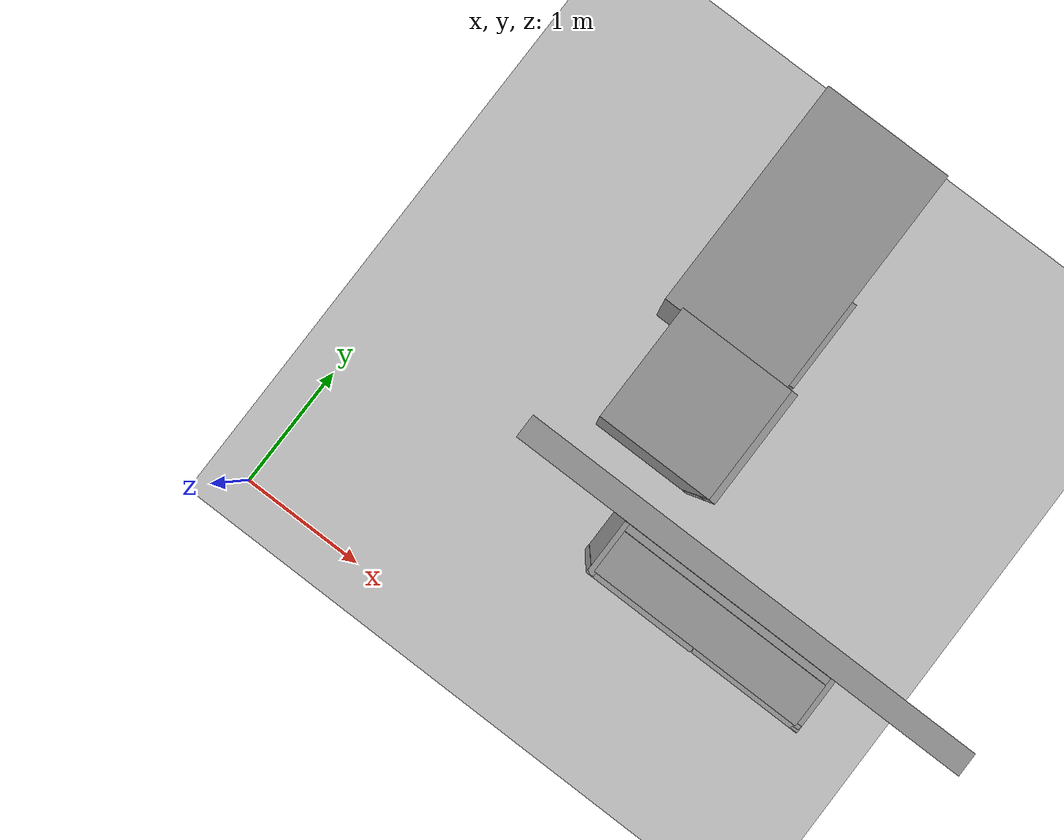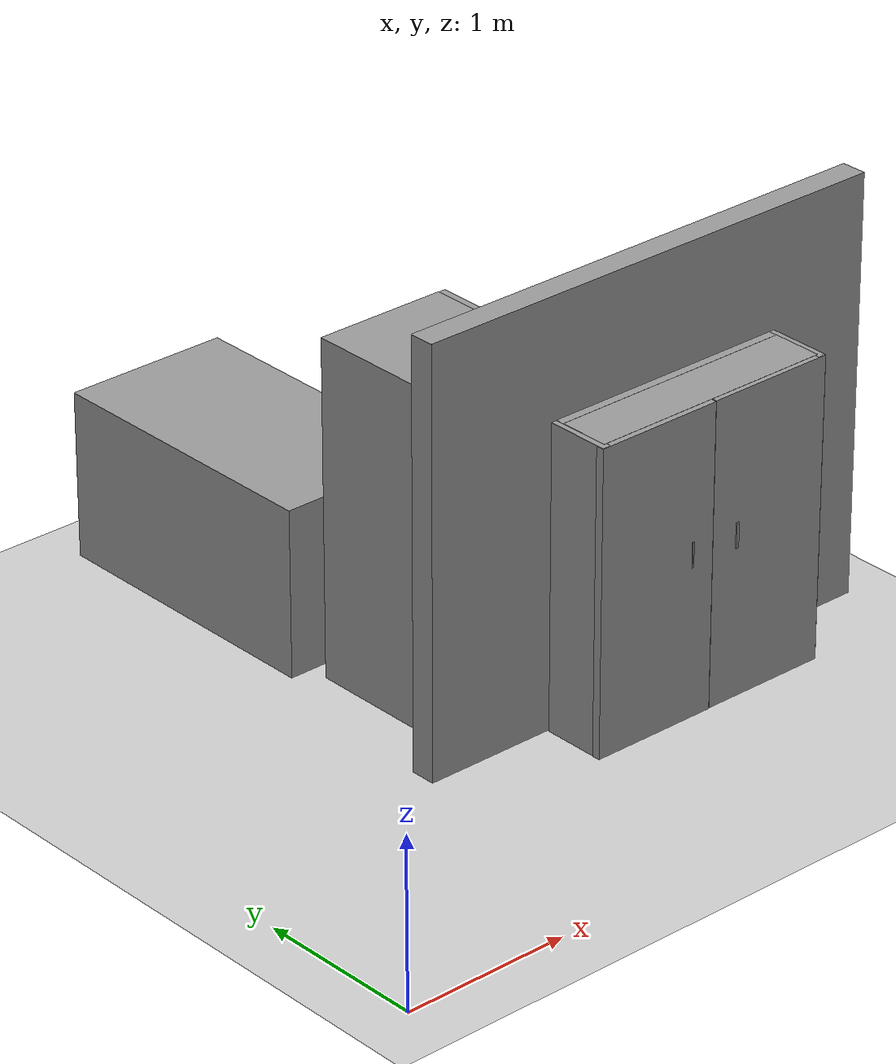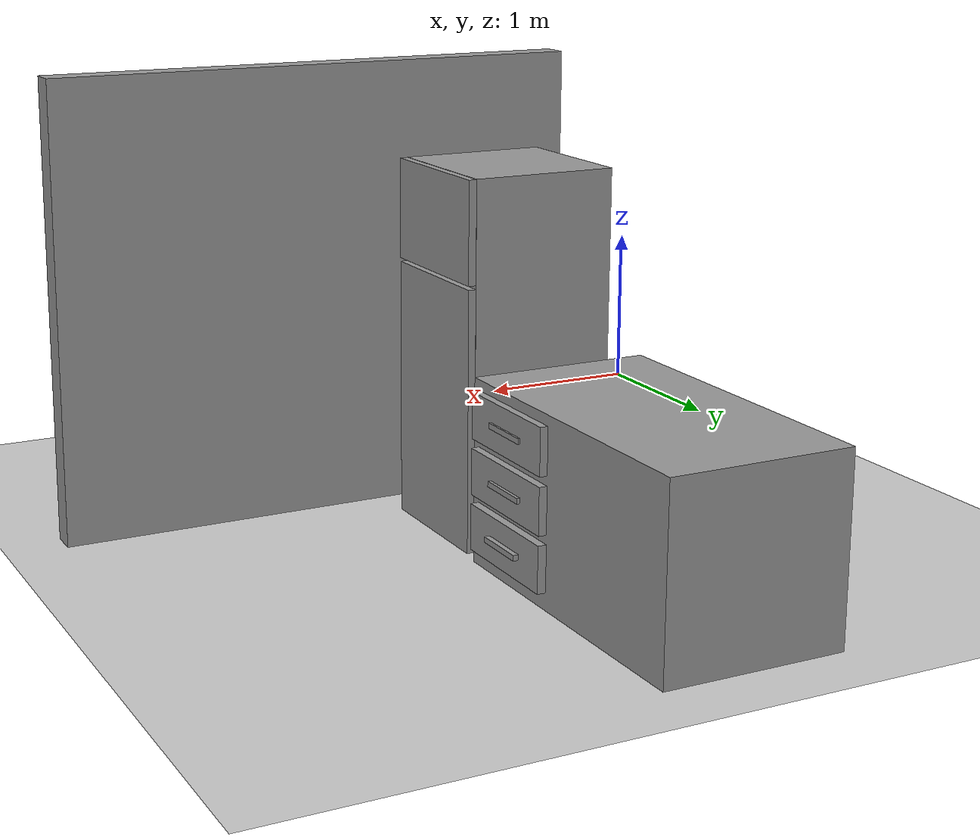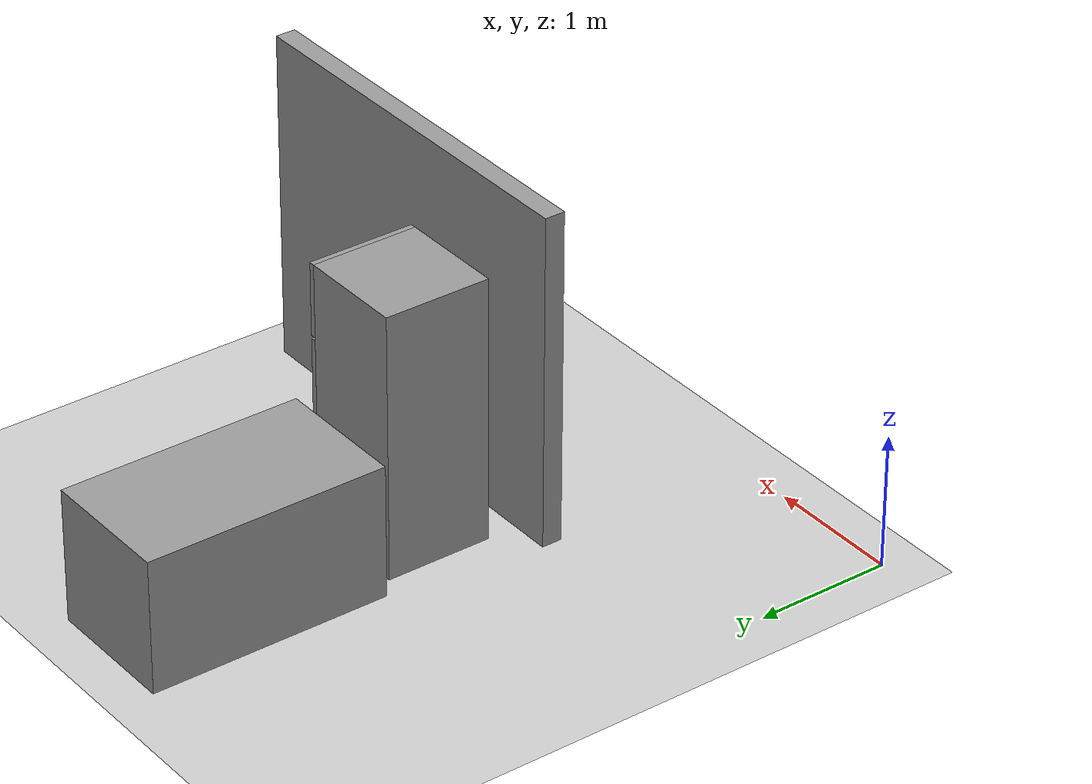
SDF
<sdf version="1.7">
 <world name="default">
  <model name="ground_plane">
   <static>1</static>
   <link name="link">
    <collision name="collision">
     <geometry><plane><normal>0 0 1</normal><size>100 100</size></plane></geometry>
     <surface>
      <contact><collide_bitmask>65535</collide_bitmask></contact>
      <friction><ode><mu>100</mu><mu2>50</mu2></ode></friction>
     </surface>
    </collision>
    <visual name="visual">
     <cast_shadows>0</cast_shadows>
     <geometry><plane><normal>0 0 1</normal><size>100 100</size></plane></geometry>
     <material>
      <script><uri>file://media/materials/scripts/gazebo.material</uri><name>Gazebo/Grey</name></script>
     </material>
    </visual>
   </link>
  </model>
  <model name="my_building_p4">
   <link name="Wall_43">
    <pose>4.5 -1.38492 0 0 -0 0</pose>
    <inertial>
     <mass>1</mass>
     <inertia><ixx>1</ixx><ixy>0</ixy><ixz>0</ixz><iyy>1</iyy><iyz>0</iyz><izz>1</izz></inertia>
    </inertial>
    <visual name="Wall_43_Visual">
     <pose>-1.5 0 1.25 0 -0 0</pose>
     <geometry><box><size>3 0.15 2.5</size></box></geometry>
     <material>
      <script><uri>file://media/materials/scripts/gazebo.material</uri><name>Gazebo/Grey</name></script>
      <ambient>1 1 1 1</ambient>
      <shader type="pixel"><normal_map>__default__</normal_map></shader>
      <diffuse>0.7 0.7 0.7 1</diffuse>
      <specular>0.01 0.01 0.01 1</specular>
      <emissive>0 0 0 1</emissive>
     </material>
     <meta><layer>0</layer></meta>
    </visual>
    <collision name="Wall_43_Collision">
     <pose>-1.5 0 1.25 0 -0 0</pose>
     <geometry><box><size>3 0.15 2.5</size></box></geometry>
     <surface>
      <friction>
       <ode><mu>1</mu><mu2>1</mu2><fdir1>0 0 0</fdir1><slip1>0</slip1><slip2>0</slip2></ode>
       <torsional>
        <coefficient>1</coefficient>
        <patch_radius>0</patch_radius>
        <surface_radius>0</surface_radius>
        <use_patch_radius>1</use_patch_radius>
        <ode><slip>0</slip></ode>
       </torsional>
      </friction>
      <bounce><restitution_coefficient>0</restitution_coefficient><threshold>1e+06</threshold></bounce>
      <contact>
       <collide_without_contact>0</collide_without_contact>
       <collide_without_contact_bitmask>1</collide_without_contact_bitmask>
       <collide_bitmask>1</collide_bitmask>
       <ode>
        <soft_cfm>0</soft_cfm>
        <soft_erp>0.2</soft_erp>
        <kp>1e+13</kp>
        <kd>1</kd>
        <max_vel>0.01</max_vel>
        <min_depth>0</min_depth>
       </ode>
       <bullet>
        <split_impulse>1</split_impulse>
        <split_impulse_penetration_threshold>-0.01</split_impulse_penetration_threshold>
        <soft_cfm>0</soft_cfm>
        <soft_erp>0.2</soft_erp>
        <kp>1e+13</kp>
        <kd>1</kd>
       </bullet>
      </contact>
     </surface>
    </collision>
   </link>
   <static>1</static>
   <pose>-0.017657 2.964 0 0 -0 0</pose>
  </model>
  <model name="my_kitchen">
   <link name="link_clone">
    <inertial>
     <mass>1</mass>
     <inertia>
      <ixx>0.166667</ixx>
      <ixy>0</ixy>
      <ixz>0</ixz>
      <iyy>0.166667</iyy>
      <iyz>0</iyz>
      <izz>0.166667</izz>
     </inertia>
    </inertial>
    <pose>-1.0136 -2.15012 0 0 -0 0</pose>
    <visual name="visual">
     <geometry><box><size>1 1.8 1</size></box></geometry>
     <material>
      <script><name>Gazebo/Grey</name><uri>file://media/materials/scripts/gazebo.material</uri></script>
      <shader type="pixel"><normal_map>__default__</normal_map></shader>
      <ambient>0.8 0.8 0.8 1</ambient>
      <diffuse>0.65 0.65 0.65 1</diffuse>
      <specular>0.01 0.01 0.01 1</specular>
      <emissive>0 0 0 1</emissive>
     </material>
     <pose>0 0 0.5 0 -0 0</pose>
    </visual>
    <collision name="collision">
     <pose>0 0 0.5 0 -0 0</pose>
     <geometry><box><size>1 1.8 1</size></box></geometry>
     <surface>
      <friction>
       <ode><mu>1</mu><mu2>1</mu2><fdir1>0 0 0</fdir1><slip1>0</slip1><slip2>0</slip2></ode>
       <torsional>
        <coefficient>1</coefficient>
        <patch_radius>0</patch_radius>
        <surface_radius>0</surface_radius>
        <use_patch_radius>1</use_patch_radius>
        <ode><slip>0</slip></ode>
       </torsional>
      </friction>
      <bounce><restitution_coefficient>0</restitution_coefficient><threshold>1e+06</threshold></bounce>
      <contact>
       <collide_without_contact>0</collide_without_contact>
       <collide_without_contact_bitmask>1</collide_without_contact_bitmask>
       <collide_bitmask>1</collide_bitmask>
       <ode>
        <soft_cfm>0</soft_cfm>
        <soft_erp>0.2</soft_erp>
        <kp>1e+13</kp>
        <kd>1</kd>
        <max_vel>0.01</max_vel>
        <min_depth>0</min_depth>
       </ode>
       <bullet>
        <split_impulse>1</split_impulse>
        <split_impulse_penetration_threshold>-0.01</split_impulse_penetration_threshold>
        <soft_cfm>0</soft_cfm>
        <soft_erp>0.2</soft_erp>
        <kp>1e+13</kp>
        <kd>1</kd>
       </bullet>
      </contact>
     </surface>
    </collision>
   </link>
   <link name="link_clone_clone_clone_0_clone">
    <inertial>
     <mass>1</mass>
     <inertia>
      <ixx>0.166667</ixx>
      <ixy>0</ixy>
      <ixz>0</ixz>
      <iyy>0.166667</iyy>
      <iyz>0</iyz>
      <izz>0.166667</izz>
     </inertia>
    </inertial>
    <pose>-0.495016 -2.64917 0.017117 0 -0 0</pose>
    <visual name="visual">
     <geometry><box><size>0.05 0.7 0.25</size></box></geometry>
     <material>
      <script><name>Gazebo/Grey</name><uri>file://media/materials/scripts/gazebo.material</uri></script>
      <shader type="pixel"><normal_map>__default__</normal_map></shader>
      <ambient>0.4 0.4 0.4 1</ambient>
      <diffuse>0.4 0.4 0.4 1</diffuse>
      <specular>0.01 0.01 0.01 1</specular>
      <emissive>0 0 0 1</emissive>
     </material>
     <pose>0 0 0.5 0 -0 0</pose>
    </visual>
    <collision name="collision">
     <pose>0 0 0.5 0 -0 0</pose>
     <geometry><box><size>0.05 0.7 0.25</size></box></geometry>
     <surface>
      <friction>
       <ode><mu>1</mu><mu2>1</mu2><fdir1>0 0 0</fdir1><slip1>0</slip1><slip2>0</slip2></ode>
       <torsional>
        <coefficient>1</coefficient>
        <patch_radius>0</patch_radius>
        <surface_radius>0</surface_radius>
        <use_patch_radius>1</use_patch_radius>
        <ode><slip>0</slip></ode>
       </torsional>
      </friction>
      <bounce><restitution_coefficient>0</restitution_coefficient><threshold>1e+06</threshold></bounce>
      <contact>
       <collide_without_contact>0</collide_without_contact>
       <collide_without_contact_bitmask>1</collide_without_contact_bitmask>
       <collide_bitmask>1</collide_bitmask>
       <ode>
        <soft_cfm>0</soft_cfm>
        <soft_erp>0.2</soft_erp>
        <kp>1e+13</kp>
        <kd>1</kd>
        <max_vel>0.01</max_vel>
        <min_depth>0</min_depth>
       </ode>
       <bullet>
        <split_impulse>1</split_impulse>
        <split_impulse_penetration_threshold>-0.01</split_impulse_penetration_threshold>
        <soft_cfm>0</soft_cfm>
        <soft_erp>0.2</soft_erp>
        <kp>1e+13</kp>
        <kd>1</kd>
       </bullet>
      </contact>
     </surface>
    </collision>
   </link>
   <link name="link_clone_clone_clone_0_clone_clone">
    <inertial>
     <mass>1</mass>
     <inertia>
      <ixx>0.166667</ixx>
      <ixy>0</ixy>
      <ixz>0</ixz>
      <iyy>0.166667</iyy>
      <iyz>0</iyz>
      <izz>0.166667</izz>
     </inertia>
    </inertial>
    <pose>-0.496692 -2.64979 0.318441 0 -0 0</pose>
    <visual name="visual">
     <geometry><box><size>0.05 0.7 0.25</size></box></geometry>
     <material>
      <script><name>Gazebo/Grey</name><uri>file://media/materials/scripts/gazebo.material</uri></script>
      <shader type="pixel"><normal_map>__default__</normal_map></shader>
      <ambient>0.4 0.4 0.4 1</ambient>
      <diffuse>0.4 0.4 0.4 1</diffuse>
      <specular>0.01 0.01 0.01 1</specular>
      <emissive>0 0 0 1</emissive>
     </material>
     <pose>0 0 0.5 0 -0 0</pose>
    </visual>
    <collision name="collision">
     <pose>0 0 0.5 0 -0 0</pose>
     <geometry><box><size>0.05 0.7 0.25</size></box></geometry>
     <surface>
      <friction>
       <ode><mu>1</mu><mu2>1</mu2><fdir1>0 0 0</fdir1><slip1>0</slip1><slip2>0</slip2></ode>
       <torsional>
        <coefficient>1</coefficient>
        <patch_radius>0</patch_radius>
        <surface_radius>0</surface_radius>
        <use_patch_radius>1</use_patch_radius>
        <ode><slip>0</slip></ode>
       </torsional>
      </friction>
      <bounce><restitution_coefficient>0</restitution_coefficient><threshold>1e+06</threshold></bounce>
      <contact>
       <collide_without_contact>0</collide_without_contact>
       <collide_without_contact_bitmask>1</collide_without_contact_bitmask>
       <collide_bitmask>1</collide_bitmask>
       <ode>
        <soft_cfm>0</soft_cfm>
        <soft_erp>0.2</soft_erp>
        <kp>1e+13</kp>
        <kd>1</kd>
        <max_vel>0.01</max_vel>
        <min_depth>0</min_depth>
       </ode>
       <bullet>
        <split_impulse>1</split_impulse>
        <split_impulse_penetration_threshold>-0.01</split_impulse_penetration_threshold>
        <soft_cfm>0</soft_cfm>
        <soft_erp>0.2</soft_erp>
        <kp>1e+13</kp>
        <kd>1</kd>
       </bullet>
      </contact>
     </surface>
    </collision>
   </link>
   <link name="link_clone_clone_clone_0_clone_clone_0">
    <inertial>
     <mass>1</mass>
     <inertia>
      <ixx>0.166667</ixx>
      <ixy>0</ixy>
      <ixz>0</ixz>
      <iyy>0.166667</iyy>
      <iyz>0</iyz>
      <izz>0.166667</izz>
     </inertia>
    </inertial>
    <pose>-0.49222 -2.64791 -0.281579 0 -0 0</pose>
    <visual name="visual">
     <geometry><box><size>0.05 0.7 0.25</size></box></geometry>
     <material>
      <script><name>Gazebo/Grey</name><uri>file://media/materials/scripts/gazebo.material</uri></script>
      <shader type="pixel"><normal_map>__default__</normal_map></shader>
      <ambient>0.4 0.4 0.4 1</ambient>
      <diffuse>0.4 0.4 0.4 1</diffuse>
      <specular>0.01 0.01 0.01 1</specular>
      <emissive>0 0 0 1</emissive>
     </material>
     <pose>0 0 0.5 0 -0 0</pose>
    </visual>
    <collision name="collision">
     <pose>0 0 0.5 0 -0 0</pose>
     <geometry><box><size>0.05 0.7 0.25</size></box></geometry>
     <surface>
      <friction>
       <ode><mu>1</mu><mu2>1</mu2><fdir1>0 0 0</fdir1><slip1>0</slip1><slip2>0</slip2></ode>
       <torsional>
        <coefficient>1</coefficient>
        <patch_radius>0</patch_radius>
        <surface_radius>0</surface_radius>
        <use_patch_radius>1</use_patch_radius>
        <ode><slip>0</slip></ode>
       </torsional>
      </friction>
      <bounce><restitution_coefficient>0</restitution_coefficient><threshold>1e+06</threshold></bounce>
      <contact>
       <collide_without_contact>0</collide_without_contact>
       <collide_without_contact_bitmask>1</collide_without_contact_bitmask>
       <collide_bitmask>1</collide_bitmask>
       <ode>
        <soft_cfm>0</soft_cfm>
        <soft_erp>0.2</soft_erp>
        <kp>1e+13</kp>
        <kd>1</kd>
        <max_vel>0.01</max_vel>
        <min_depth>0</min_depth>
       </ode>
       <bullet>
        <split_impulse>1</split_impulse>
        <split_impulse_penetration_threshold>-0.01</split_impulse_penetration_threshold>
        <soft_cfm>0</soft_cfm>
        <soft_erp>0.2</soft_erp>
        <kp>1e+13</kp>
        <kd>1</kd>
       </bullet>
      </contact>
     </surface>
    </collision>
   </link>
   <link name="link_clone_clone_clone_0_clone_clone_clone_clone">
    <inertial>
     <mass>1</mass>
     <inertia>
      <ixx>0.166667</ixx>
      <ixy>0</ixy>
      <ixz>0</ixz>
      <iyy>0.166667</iyy>
      <iyz>0</iyz>
      <izz>0.166667</izz>
     </inertia>
    </inertial>
    <pose>-0.477732 -2.6395 0.015278 0 -0 0</pose>
    <visual name="visual">
     <geometry><box><size>0.05 0.3 0.03</size></box></geometry>
     <material>
      <script><name>Gazebo/Grey</name><uri>file://media/materials/scripts/gazebo.material</uri></script>
      <shader type="pixel"><normal_map>__default__</normal_map></shader>
      <ambient>0.9 0.9 0.9 1</ambient>
      <diffuse>0.8 0.8 0.8 1</diffuse>
      <specular>0.01 0.01 0.01 1</specular>
      <emissive>0 0 0 1</emissive>
     </material>
     <pose>0 0 0.5 0 -0 0</pose>
    </visual>
    <collision name="collision">
     <pose>0 0 0.5 0 -0 0</pose>
     <geometry><box><size>0.05 0.3 0.03</size></box></geometry>
     <surface>
      <friction>
       <ode><mu>1</mu><mu2>1</mu2><fdir1>0 0 0</fdir1><slip1>0</slip1><slip2>0</slip2></ode>
       <torsional>
        <coefficient>1</coefficient>
        <patch_radius>0</patch_radius>
        <surface_radius>0</surface_radius>
        <use_patch_radius>1</use_patch_radius>
        <ode><slip>0</slip></ode>
       </torsional>
      </friction>
      <bounce><restitution_coefficient>0</restitution_coefficient><threshold>1e+06</threshold></bounce>
      <contact>
       <collide_without_contact>0</collide_without_contact>
       <collide_without_contact_bitmask>1</collide_without_contact_bitmask>
       <collide_bitmask>1</collide_bitmask>
       <ode>
        <soft_cfm>0</soft_cfm>
        <soft_erp>0.2</soft_erp>
        <kp>1e+13</kp>
        <kd>1</kd>
        <max_vel>0.01</max_vel>
        <min_depth>0</min_depth>
       </ode>
       <bullet>
        <split_impulse>1</split_impulse>
        <split_impulse_penetration_threshold>-0.01</split_impulse_penetration_threshold>
        <soft_cfm>0</soft_cfm>
        <soft_erp>0.2</soft_erp>
        <kp>1e+13</kp>
        <kd>1</kd>
       </bullet>
      </contact>
     </surface>
    </collision>
   </link>
   <link name="link_clone_clone_clone_0_clone_clone_clone_clone_0">
    <inertial>
     <mass>1</mass>
     <inertia>
      <ixx>0.166667</ixx>
      <ixy>0</ixy>
      <ixz>0</ixz>
      <iyy>0.166667</iyy>
      <iyz>0</iyz>
      <izz>0.166667</izz>
     </inertia>
    </inertial>
    <pose>-0.485904 -2.64716 0.318441 0 -0 0</pose>
    <visual name="visual">
     <geometry><box><size>0.05 0.3 0.03</size></box></geometry>
     <material>
      <script><name>Gazebo/Grey</name><uri>file://media/materials/scripts/gazebo.material</uri></script>
      <shader type="pixel"><normal_map>__default__</normal_map></shader>
      <ambient>0.9 0.9 0.9 1</ambient>
      <diffuse>0.8 0.8 0.8 1</diffuse>
      <specular>0.01 0.01 0.01 1</specular>
      <emissive>0 0 0 1</emissive>
     </material>
     <pose>0 0 0.5 0 -0 0</pose>
    </visual>
    <collision name="collision">
     <pose>0 0 0.5 0 -0 0</pose>
     <geometry><box><size>0.05 0.3 0.03</size></box></geometry>
     <surface>
      <friction>
       <ode><mu>1</mu><mu2>1</mu2><fdir1>0 0 0</fdir1><slip1>0</slip1><slip2>0</slip2></ode>
       <torsional>
        <coefficient>1</coefficient>
        <patch_radius>0</patch_radius>
        <surface_radius>0</surface_radius>
        <use_patch_radius>1</use_patch_radius>
        <ode><slip>0</slip></ode>
       </torsional>
      </friction>
      <bounce><restitution_coefficient>0</restitution_coefficient><threshold>1e+06</threshold></bounce>
      <contact>
       <collide_without_contact>0</collide_without_contact>
       <collide_without_contact_bitmask>1</collide_without_contact_bitmask>
       <collide_bitmask>1</collide_bitmask>
       <ode>
        <soft_cfm>0</soft_cfm>
        <soft_erp>0.2</soft_erp>
        <kp>1e+13</kp>
        <kd>1</kd>
        <max_vel>0.01</max_vel>
        <min_depth>0</min_depth>
       </ode>
       <bullet>
        <split_impulse>1</split_impulse>
        <split_impulse_penetration_threshold>-0.01</split_impulse_penetration_threshold>
        <soft_cfm>0</soft_cfm>
        <soft_erp>0.2</soft_erp>
        <kp>1e+13</kp>
        <kd>1</kd>
       </bullet>
      </contact>
     </surface>
    </collision>
   </link>
   <link name="link_clone_clone_clone_0_clone_clone_clone_clone_clone">
    <inertial>
     <mass>1</mass>
     <inertia>
      <ixx>0.166667</ixx>
      <ixy>0</ixy>
      <ixz>0</ixz>
      <iyy>0.166667</iyy>
      <iyz>0</iyz>
      <izz>0.166667</izz>
     </inertia>
    </inertial>
    <pose>-0.462675 -2.63964 -0.279787 0 -0 0</pose>
    <gravity>0</gravity>
    <visual name="visual">
     <geometry><box><size>0.05 0.3 0.03</size></box></geometry>
     <material>
      <script><name>Gazebo/Grey</name><uri>file://media/materials/scripts/gazebo.material</uri></script>
      <shader type="pixel"><normal_map>__default__</normal_map></shader>
      <ambient>0.9 0.9 0.9 1</ambient>
      <diffuse>0.8 0.8 0.8 1</diffuse>
      <specular>0.01 0.01 0.01 1</specular>
      <emissive>0 0 0 1</emissive>
     </material>
     <pose>0 0 0.5 0 -0 0</pose>
    </visual>
    <collision name="collision">
     <pose>0 0 0.5 0 -0 0</pose>
     <geometry><box><size>0.05 0.3 0.03</size></box></geometry>
     <surface>
      <friction>
       <ode><mu>1</mu><mu2>1</mu2><fdir1>0 0 0</fdir1><slip1>0</slip1><slip2>0</slip2></ode>
       <torsional>
        <coefficient>1</coefficient>
        <patch_radius>0</patch_radius>
        <surface_radius>0</surface_radius>
        <use_patch_radius>1</use_patch_radius>
        <ode><slip>0</slip></ode>
       </torsional>
      </friction>
      <bounce><restitution_coefficient>0</restitution_coefficient><threshold>1e+06</threshold></bounce>
      <contact>
       <collide_without_contact>0</collide_without_contact>
       <collide_without_contact_bitmask>1</collide_without_contact_bitmask>
       <collide_bitmask>1</collide_bitmask>
       <ode>
        <soft_cfm>0</soft_cfm>
        <soft_erp>0.2</soft_erp>
        <kp>1e+13</kp>
        <kd>1</kd>
        <max_vel>0.01</max_vel>
        <min_depth>0</min_depth>
       </ode>
       <bullet>
        <split_impulse>1</split_impulse>
        <split_impulse_penetration_threshold>-0.01</split_impulse_penetration_threshold>
        <soft_cfm>0</soft_cfm>
        <soft_erp>0.2</soft_erp>
        <kp>1e+13</kp>
        <kd>1</kd>
       </bullet>
      </contact>
     </surface>
    </collision>
   </link>
   <static>1</static>
   <pose>3.14913 5.84953 0 0 -0 0</pose>
  </model>
  <model name="my_fridge">
   <link name="link">
    <inertial>
     <mass>1</mass>
     <inertia>
      <ixx>0.166667</ixx>
      <ixy>0</ixy>
      <ixz>0</ixz>
      <iyy>0.166667</iyy>
      <iyz>0</iyz>
      <izz>0.166667</izz>
     </inertia>
    </inertial>
    <pose>-0.12412 0.053369 0.101591 0 -0 0</pose>
    <visual name="visual">
     <geometry><box><size>0.8 0.8 2</size></box></geometry>
     <material>
      <script><name>Gazebo/Grey</name><uri>file://media/materials/scripts/gazebo.material</uri></script>
      <shader type="pixel"><normal_map>__default__</normal_map></shader>
      <ambient>0.9 0.9 0.9 1</ambient>
      <diffuse>0.9 0.9 0.9 1</diffuse>
      <specular>0.01 0.01 0.01 1</specular>
      <emissive>0 0 0 1</emissive>
     </material>
     <pose>0 0 0.9 0 -0 0</pose>
    </visual>
    <collision name="collision">
     <pose>0 0 0.9 0 -0 0</pose>
     <geometry><box><size>0.8 0.8 2</size></box></geometry>
     <surface>
      <friction>
       <ode><mu>1</mu><mu2>1</mu2><fdir1>0 0 0</fdir1><slip1>0</slip1><slip2>0</slip2></ode>
       <torsional>
        <coefficient>1</coefficient>
        <patch_radius>0</patch_radius>
        <surface_radius>0</surface_radius>
        <use_patch_radius>1</use_patch_radius>
        <ode><slip>0</slip></ode>
       </torsional>
      </friction>
      <bounce><restitution_coefficient>0</restitution_coefficient><threshold>1e+06</threshold></bounce>
      <contact>
       <collide_without_contact>0</collide_without_contact>
       <collide_without_contact_bitmask>1</collide_without_contact_bitmask>
       <collide_bitmask>1</collide_bitmask>
       <ode>
        <soft_cfm>0</soft_cfm>
        <soft_erp>0.2</soft_erp>
        <kp>1e+13</kp>
        <kd>1</kd>
        <max_vel>0.01</max_vel>
        <min_depth>0</min_depth>
       </ode>
       <bullet>
        <split_impulse>1</split_impulse>
        <split_impulse_penetration_threshold>-0.01</split_impulse_penetration_threshold>
        <soft_cfm>0</soft_cfm>
        <soft_erp>0.2</soft_erp>
        <kp>1e+13</kp>
        <kd>1</kd>
       </bullet>
      </contact>
     </surface>
    </collision>
   </link>
   <link name="link_clone_0_clone_0">
    <inertial>
     <mass>1</mass>
     <inertia>
      <ixx>0.166667</ixx>
      <ixy>0</ixy>
      <ixz>0</ixz>
      <iyy>0.166667</iyy>
      <iyz>0</iyz>
      <izz>0.166667</izz>
     </inertia>
    </inertial>
    <pose>0.292284 0.052276 -0.185669 0 -0 0</pose>
    <visual name="visual">
     <geometry><box><size>0.05 0.8 1.43</size></box></geometry>
     <material>
      <script><name>Gazebo/Grey</name><uri>file://media/materials/scripts/gazebo.material</uri></script>
      <shader type="pixel"><normal_map>__default__</normal_map></shader>
      <ambient>0.87 0.87 0.87 1</ambient>
      <diffuse>0.87 0.87 0.87 1</diffuse>
      <specular>0.01 0.01 0.01 1</specular>
      <emissive>0 0 0 1</emissive>
     </material>
     <pose>0 0 0.9 0 -0 0</pose>
    </visual>
    <collision name="collision">
     <pose>0 0 0.9 0 -0 0</pose>
     <geometry><box><size>0.05 0.8 1.43</size></box></geometry>
     <surface>
      <friction>
       <ode><mu>1</mu><mu2>1</mu2><fdir1>0 0 0</fdir1><slip1>0</slip1><slip2>0</slip2></ode>
       <torsional>
        <coefficient>1</coefficient>
        <patch_radius>0</patch_radius>
        <surface_radius>0</surface_radius>
        <use_patch_radius>1</use_patch_radius>
        <ode><slip>0</slip></ode>
       </torsional>
      </friction>
      <bounce><restitution_coefficient>0</restitution_coefficient><threshold>1e+06</threshold></bounce>
      <contact>
       <collide_without_contact>0</collide_without_contact>
       <collide_without_contact_bitmask>1</collide_without_contact_bitmask>
       <collide_bitmask>1</collide_bitmask>
       <ode>
        <soft_cfm>0</soft_cfm>
        <soft_erp>0.2</soft_erp>
        <kp>1e+13</kp>
        <kd>1</kd>
        <max_vel>0.01</max_vel>
        <min_depth>0</min_depth>
       </ode>
       <bullet>
        <split_impulse>1</split_impulse>
        <split_impulse_penetration_threshold>-0.01</split_impulse_penetration_threshold>
        <soft_cfm>0</soft_cfm>
        <soft_erp>0.2</soft_erp>
        <kp>1e+13</kp>
        <kd>1</kd>
       </bullet>
      </contact>
     </surface>
    </collision>
   </link>
   <link name="link_clone_0_clone_0_clone">
    <inertial>
     <mass>1</mass>
     <inertia>
      <ixx>0.166667</ixx>
      <ixy>0</ixy>
      <ixz>0</ixz>
      <iyy>0.166667</iyy>
      <iyz>0</iyz>
      <izz>0.166667</izz>
     </inertia>
    </inertial>
    <pose>0.294013 0.052474 0.824873 0 -0 0</pose>
    <visual name="visual">
     <geometry><box><size>0.05 0.8 0.55</size></box></geometry>
     <material>
      <script><name>Gazebo/Grey</name><uri>file://media/materials/scripts/gazebo.material</uri></script>
      <shader type="pixel"><normal_map>__default__</normal_map></shader>
      <ambient>0.87 0.87 0.87 1</ambient>
      <diffuse>0.87 0.87 0.87 1</diffuse>
      <specular>0.01 0.01 0.01 1</specular>
      <emissive>0 0 0 1</emissive>
     </material>
     <pose>0 0 0.9 0 -0 0</pose>
    </visual>
    <collision name="collision">
     <pose>0 0 0.9 0 -0 0</pose>
     <geometry><box><size>0.05 0.8 0.55</size></box></geometry>
     <surface>
      <friction>
       <ode><mu>1</mu><mu2>1</mu2><fdir1>0 0 0</fdir1><slip1>0</slip1><slip2>0</slip2></ode>
       <torsional>
        <coefficient>1</coefficient>
        <patch_radius>0</patch_radius>
        <surface_radius>0</surface_radius>
        <use_patch_radius>1</use_patch_radius>
        <ode><slip>0</slip></ode>
       </torsional>
      </friction>
      <bounce><restitution_coefficient>0</restitution_coefficient><threshold>1e+06</threshold></bounce>
      <contact>
       <collide_without_contact>0</collide_without_contact>
       <collide_without_contact_bitmask>1</collide_without_contact_bitmask>
       <collide_bitmask>1</collide_bitmask>
       <ode>
        <soft_cfm>0</soft_cfm>
        <soft_erp>0.2</soft_erp>
        <kp>1e+13</kp>
        <kd>1</kd>
        <max_vel>0.01</max_vel>
        <min_depth>0</min_depth>
       </ode>
       <bullet>
        <split_impulse>1</split_impulse>
        <split_impulse_penetration_threshold>-0.01</split_impulse_penetration_threshold>
        <soft_cfm>0</soft_cfm>
        <soft_erp>0.2</soft_erp>
        <kp>1e+13</kp>
        <kd>1</kd>
       </bullet>
      </contact>
     </surface>
    </collision>
   </link>
   <static>1</static>
   <pose>2.29549 2.23095 0 0 -0 0</pose>
  </model>
  <model name="my_wardrobe_0">
   <link name="link">
    <inertial>
     <mass>1</mass>
     <inertia>
      <ixx>0.166667</ixx>
      <ixy>0</ixy>
      <ixz>0</ixz>
      <iyy>0.166667</iyy>
      <iyz>0</iyz>
      <izz>0.166667</izz>
     </inertia>
    </inertial>
    <pose>0.010503 -0.018536 0.006993 0 -0 0</pose>
    <visual name="visual">
     <geometry><box><size>0.05 1.5 1.8</size></box></geometry>
     <material>
      <script><name>Gazebo/Grey</name><uri>file://media/materials/scripts/gazebo.material</uri></script>
      <shader type="pixel"><normal_map>__default__</normal_map></shader>
      <ambient>0.9 0.9 0.9 1</ambient>
      <diffuse>0.9 0.9 0.9 1</diffuse>
      <specular>0.01 0.01 0.01 1</specular>
      <emissive>0 0 0 1</emissive>
     </material>
     <pose>0 0 0.9 0 -0 0</pose>
    </visual>
    <collision name="collision">
     <pose>0 0 0.9 0 -0 0</pose>
     <geometry><box><size>0.05 1.5 1.8</size></box></geometry>
     <surface>
      <friction>
       <ode><mu>1</mu><mu2>1</mu2><fdir1>0 0 0</fdir1><slip1>0</slip1><slip2>0</slip2></ode>
       <torsional>
        <coefficient>1</coefficient>
        <patch_radius>0</patch_radius>
        <surface_radius>0</surface_radius>
        <use_patch_radius>1</use_patch_radius>
        <ode><slip>0</slip></ode>
       </torsional>
      </friction>
      <bounce><restitution_coefficient>0</restitution_coefficient><threshold>1e+06</threshold></bounce>
      <contact>
       <collide_without_contact>0</collide_without_contact>
       <collide_without_contact_bitmask>1</collide_without_contact_bitmask>
       <collide_bitmask>1</collide_bitmask>
       <ode>
        <soft_cfm>0</soft_cfm>
        <soft_erp>0.2</soft_erp>
        <kp>1e+13</kp>
        <kd>1</kd>
        <max_vel>0.01</max_vel>
        <min_depth>0</min_depth>
       </ode>
       <bullet>
        <split_impulse>1</split_impulse>
        <split_impulse_penetration_threshold>-0.01</split_impulse_penetration_threshold>
        <soft_cfm>0</soft_cfm>
        <soft_erp>0.2</soft_erp>
        <kp>1e+13</kp>
        <kd>1</kd>
       </bullet>
      </contact>
     </surface>
    </collision>
   </link>
   <link name="link_1">
    <inertial>
     <mass>1</mass>
     <inertia>
      <ixx>0.166667</ixx>
      <ixy>0</ixy>
      <ixz>0</ixz>
      <iyy>0.166667</iyy>
      <iyz>0</iyz>
      <izz>0.166667</izz>
     </inertia>
    </inertial>
    <pose>0.374225 0.148278 0.975818 0 0 -1.57963</pose>
    <visual name="visual">
     <geometry><box><size>0.015 0.01 0.15</size></box></geometry>
     <material>
      <lighting>1</lighting>
      <script><uri>file://media/materials/scripts/gazebo.material</uri><name>Gazebo/Grey</name></script>
      <shader type="pixel"><normal_map>__default__</normal_map></shader>
      <ambient>0.3 0.3 0.3 1</ambient>
      <diffuse>0.7 0.7 0.7 1</diffuse>
      <specular>0.01 0.01 0.01 1</specular>
      <emissive>0 0 0 1</emissive>
     </material>
    </visual>
    <collision name="collision">
     <geometry><box><size>0.015 0.01 0.15</size></box></geometry>
     <surface>
      <friction>
       <ode><mu>1</mu><mu2>1</mu2><fdir1>0 0 0</fdir1><slip1>0</slip1><slip2>0</slip2></ode>
       <torsional>
        <coefficient>1</coefficient>
        <patch_radius>0</patch_radius>
        <surface_radius>0</surface_radius>
        <use_patch_radius>1</use_patch_radius>
        <ode><slip>0</slip></ode>
       </torsional>
      </friction>
      <bounce><restitution_coefficient>0</restitution_coefficient><threshold>1e+06</threshold></bounce>
      <contact>
       <collide_without_contact>0</collide_without_contact>
       <collide_without_contact_bitmask>1</collide_without_contact_bitmask>
       <collide_bitmask>1</collide_bitmask>
       <ode>
        <soft_cfm>0</soft_cfm>
        <soft_erp>0.2</soft_erp>
        <kp>1e+13</kp>
        <kd>1</kd>
        <max_vel>0.01</max_vel>
        <min_depth>0</min_depth>
       </ode>
       <bullet>
        <split_impulse>1</split_impulse>
        <split_impulse_penetration_threshold>-0.01</split_impulse_penetration_threshold>
        <soft_cfm>0</soft_cfm>
        <soft_erp>0.2</soft_erp>
        <kp>1e+13</kp>
        <kd>1</kd>
       </bullet>
      </contact>
     </surface>
    </collision>
   </link>
   <link name="link_1_clone">
    <inertial>
     <mass>1</mass>
     <inertia>
      <ixx>0.166667</ixx>
      <ixy>0</ixy>
      <ixz>0</ixz>
      <iyy>0.166667</iyy>
      <iyz>0</iyz>
      <izz>0.166667</izz>
     </inertia>
    </inertial>
    <pose>0.36807 -0.165856 0.973071 0 -0 3.12392</pose>
    <visual name="visual">
     <geometry><box><size>0.015 0.01 0.15</size></box></geometry>
     <material>
      <lighting>1</lighting>
      <script><uri>file://media/materials/scripts/gazebo.material</uri><name>Gazebo/Grey</name></script>
      <shader type="pixel"><normal_map>__default__</normal_map></shader>
      <ambient>0.3 0.3 0.3 1</ambient>
      <diffuse>0.7 0.7 0.7 1</diffuse>
      <specular>0.01 0.01 0.01 1</specular>
      <emissive>0 0 0 1</emissive>
     </material>
    </visual>
    <collision name="collision">
     <geometry><box><size>0.015 0.01 0.15</size></box></geometry>
     <surface>
      <friction>
       <ode><mu>1</mu><mu2>1</mu2><fdir1>0 0 0</fdir1><slip1>0</slip1><slip2>0</slip2></ode>
       <torsional>
        <coefficient>1</coefficient>
        <patch_radius>0</patch_radius>
        <surface_radius>0</surface_radius>
        <use_patch_radius>1</use_patch_radius>
        <ode><slip>0</slip></ode>
       </torsional>
      </friction>
      <bounce><restitution_coefficient>0</restitution_coefficient><threshold>1e+06</threshold></bounce>
      <contact>
       <collide_without_contact>0</collide_without_contact>
       <collide_without_contact_bitmask>1</collide_without_contact_bitmask>
       <collide_bitmask>1</collide_bitmask>
       <ode>
        <soft_cfm>0</soft_cfm>
        <soft_erp>0.2</soft_erp>
        <kp>1e+13</kp>
        <kd>1</kd>
        <max_vel>0.01</max_vel>
        <min_depth>0</min_depth>
       </ode>
       <bullet>
        <split_impulse>1</split_impulse>
        <split_impulse_penetration_threshold>-0.01</split_impulse_penetration_threshold>
        <soft_cfm>0</soft_cfm>
        <soft_erp>0.2</soft_erp>
        <kp>1e+13</kp>
        <kd>1</kd>
       </bullet>
      </contact>
     </surface>
    </collision>
   </link>
   <link name="link_clone">
    <inertial>
     <mass>1</mass>
     <inertia>
      <ixx>0.166667</ixx>
      <ixy>0</ixy>
      <ixz>0</ixz>
      <iyy>0.166667</iyy>
      <iyz>0</iyz>
      <izz>0.166667</izz>
     </inertia>
    </inertial>
    <pose>0.199559 -0.011174 -1.077 1.1e-05 -0.001065 2e-06</pose>
    <visual name="visual">
     <geometry><box><size>0.3 1.5 0.04</size></box></geometry>
     <material>
      <script><name>Gazebo/Grey</name><uri>file://media/materials/scripts/gazebo.material</uri></script>
      <shader type="pixel"><normal_map>__default__</normal_map></shader>
      <ambient>0.9 0.9 0.9 1</ambient>
      <diffuse>0.9 0.9 0.9 1</diffuse>
      <specular>0.01 0.01 0.01 1</specular>
      <emissive>0 0 0 1</emissive>
     </material>
     <pose>0 0 1.1 0 -0 0</pose>
    </visual>
    <collision name="collision">
     <pose>0 0 1.1 0 -0 0</pose>
     <geometry><box><size>0.3 1.5 0.04</size></box></geometry>
     <surface>
      <friction>
       <ode><mu>1</mu><mu2>1</mu2><fdir1>0 0 0</fdir1><slip1>0</slip1><slip2>0</slip2></ode>
       <torsional>
        <coefficient>1</coefficient>
        <patch_radius>0</patch_radius>
        <surface_radius>0</surface_radius>
        <use_patch_radius>1</use_patch_radius>
        <ode><slip>0</slip></ode>
       </torsional>
      </friction>
      <bounce><restitution_coefficient>0</restitution_coefficient><threshold>1e+06</threshold></bounce>
      <contact>
       <collide_without_contact>0</collide_without_contact>
       <collide_without_contact_bitmask>1</collide_without_contact_bitmask>
       <collide_bitmask>1</collide_bitmask>
       <ode>
        <soft_cfm>0</soft_cfm>
        <soft_erp>0.2</soft_erp>
        <kp>1e+13</kp>
        <kd>1</kd>
        <max_vel>0.01</max_vel>
        <min_depth>0</min_depth>
       </ode>
       <bullet>
        <split_impulse>1</split_impulse>
        <split_impulse_penetration_threshold>-0.01</split_impulse_penetration_threshold>
        <soft_cfm>0</soft_cfm>
        <soft_erp>0.2</soft_erp>
        <kp>1e+13</kp>
        <kd>1</kd>
       </bullet>
      </contact>
     </surface>
    </collision>
   </link>
   <link name="link_clone_0">
    <inertial>
     <mass>1</mass>
     <inertia>
      <ixx>0.166667</ixx>
      <ixy>0</ixy>
      <ixz>0</ixz>
      <iyy>0.166667</iyy>
      <iyz>0</iyz>
      <izz>0.166667</izz>
     </inertia>
    </inertial>
    <pose>0.1762 -0.777121 0.006003 0 -0 0</pose>
    <visual name="visual">
     <geometry><box><size>0.05 0.38 1.8</size></box></geometry>
     <material>
      <script><name>Gazebo/Grey</name><uri>file://media/materials/scripts/gazebo.material</uri></script>
      <shader type="pixel"><normal_map>__default__</normal_map></shader>
      <ambient>0.9 0.9 0.9 1</ambient>
      <diffuse>0.9 0.9 0.9 1</diffuse>
      <specular>0.01 0.01 0.01 1</specular>
      <emissive>0 0 0 1</emissive>
     </material>
     <pose>0 0 0.9 0 -0 1.5707</pose>
    </visual>
    <collision name="collision">
     <pose>0 0 0.9 0 -0 1.5707</pose>
     <geometry><box><size>0.05 0.38 1.8</size></box></geometry>
     <surface>
      <friction>
       <ode><mu>1</mu><mu2>1</mu2><fdir1>0 0 0</fdir1><slip1>0</slip1><slip2>0</slip2></ode>
       <torsional>
        <coefficient>1</coefficient>
        <patch_radius>0</patch_radius>
        <surface_radius>0</surface_radius>
        <use_patch_radius>1</use_patch_radius>
        <ode><slip>0</slip></ode>
       </torsional>
      </friction>
      <bounce><restitution_coefficient>0</restitution_coefficient><threshold>1e+06</threshold></bounce>
      <contact>
       <collide_without_contact>0</collide_without_contact>
       <collide_without_contact_bitmask>1</collide_without_contact_bitmask>
       <collide_bitmask>1</collide_bitmask>
       <ode>
        <soft_cfm>0</soft_cfm>
        <soft_erp>0.2</soft_erp>
        <kp>1e+13</kp>
        <kd>1</kd>
        <max_vel>0.01</max_vel>
        <min_depth>0</min_depth>
       </ode>
       <bullet>
        <split_impulse>1</split_impulse>
        <split_impulse_penetration_threshold>-0.01</split_impulse_penetration_threshold>
        <soft_cfm>0</soft_cfm>
        <soft_erp>0.2</soft_erp>
        <kp>1e+13</kp>
        <kd>1</kd>
       </bullet>
      </contact>
     </surface>
    </collision>
   </link>
   <link name="link_clone_0_clone">
    <inertial>
     <mass>1</mass>
     <inertia>
      <ixx>0.166667</ixx>
      <ixy>0</ixy>
      <ixz>0</ixz>
      <iyy>0.166667</iyy>
      <iyz>0</iyz>
      <izz>0.166667</izz>
     </inertia>
    </inertial>
    <pose>0.173251 0.740189 0.006003 0 -0 0</pose>
    <visual name="visual">
     <geometry><box><size>0.05 0.38 1.8</size></box></geometry>
     <material>
      <script><name>Gazebo/Grey</name><uri>file://media/materials/scripts/gazebo.material</uri></script>
      <shader type="pixel"><normal_map>__default__</normal_map></shader>
      <ambient>0.9 0.9 0.9 1</ambient>
      <diffuse>0.9 0.9 0.9 1</diffuse>
      <specular>0.01 0.01 0.01 1</specular>
      <emissive>0 0 0 1</emissive>
     </material>
     <pose>0 0 0.9 0 -0 1.5707</pose>
    </visual>
    <collision name="collision">
     <pose>0 0 0.9 0 -0 1.5707</pose>
     <geometry><box><size>0.05 0.38 1.8</size></box></geometry>
     <surface>
      <friction>
       <ode><mu>1</mu><mu2>1</mu2><fdir1>0 0 0</fdir1><slip1>0</slip1><slip2>0</slip2></ode>
       <torsional>
        <coefficient>1</coefficient>
        <patch_radius>0</patch_radius>
        <surface_radius>0</surface_radius>
        <use_patch_radius>1</use_patch_radius>
        <ode><slip>0</slip></ode>
       </torsional>
      </friction>
      <bounce><restitution_coefficient>0</restitution_coefficient><threshold>1e+06</threshold></bounce>
      <contact>
       <collide_without_contact>0</collide_without_contact>
       <collide_without_contact_bitmask>1</collide_without_contact_bitmask>
       <collide_bitmask>1</collide_bitmask>
       <ode>
        <soft_cfm>0</soft_cfm>
        <soft_erp>0.2</soft_erp>
        <kp>1e+13</kp>
        <kd>1</kd>
        <max_vel>0.01</max_vel>
        <min_depth>0</min_depth>
       </ode>
       <bullet>
        <split_impulse>1</split_impulse>
        <split_impulse_penetration_threshold>-0.01</split_impulse_penetration_threshold>
        <soft_cfm>0</soft_cfm>
        <soft_erp>0.2</soft_erp>
        <kp>1e+13</kp>
        <kd>1</kd>
       </bullet>
      </contact>
     </surface>
    </collision>
   </link>
   <link name="link_clone_0_clone_0">
    <inertial>
     <mass>1</mass>
     <inertia>
      <ixx>0.166667</ixx>
      <ixy>0</ixy>
      <ixz>0</ixz>
      <iyy>0.166667</iyy>
      <iyz>0</iyz>
      <izz>0.166667</izz>
     </inertia>
    </inertial>
    <pose>0.345768 -0.414419 0.006003 0 -0 0</pose>
    <visual name="visual">
     <geometry><box><size>0.05 0.78 1.8</size></box></geometry>
     <material>
      <script><name>Gazebo/Grey</name><uri>file://media/materials/scripts/gazebo.material</uri></script>
      <shader type="pixel"><normal_map>__default__</normal_map></shader>
      <ambient>0.87 0.87 0.87 1</ambient>
      <diffuse>0.87 0.87 0.87 1</diffuse>
      <specular>0.01 0.01 0.01 1</specular>
      <emissive>0 0 0 1</emissive>
     </material>
     <pose>0 0 0.9 0 -0 0</pose>
    </visual>
    <collision name="collision">
     <pose>0 0 0.9 0 -0 0</pose>
     <geometry><box><size>0.05 0.78 1.8</size></box></geometry>
     <surface>
      <friction>
       <ode><mu>1</mu><mu2>1</mu2><fdir1>0 0 0</fdir1><slip1>0</slip1><slip2>0</slip2></ode>
       <torsional>
        <coefficient>1</coefficient>
        <patch_radius>0</patch_radius>
        <surface_radius>0</surface_radius>
        <use_patch_radius>1</use_patch_radius>
        <ode><slip>0</slip></ode>
       </torsional>
      </friction>
      <bounce><restitution_coefficient>0</restitution_coefficient><threshold>1e+06</threshold></bounce>
      <contact>
       <collide_without_contact>0</collide_without_contact>
       <collide_without_contact_bitmask>1</collide_without_contact_bitmask>
       <collide_bitmask>1</collide_bitmask>
       <ode>
        <soft_cfm>0</soft_cfm>
        <soft_erp>0.2</soft_erp>
        <kp>1e+13</kp>
        <kd>1</kd>
        <max_vel>0.01</max_vel>
        <min_depth>0</min_depth>
       </ode>
       <bullet>
        <split_impulse>1</split_impulse>
        <split_impulse_penetration_threshold>-0.01</split_impulse_penetration_threshold>
        <soft_cfm>0</soft_cfm>
        <soft_erp>0.2</soft_erp>
        <kp>1e+13</kp>
        <kd>1</kd>
       </bullet>
      </contact>
     </surface>
    </collision>
   </link>
   <link name="link_clone_0_clone_0_clone">
    <inertial>
     <mass>1</mass>
     <inertia>
      <ixx>0.166667</ixx>
      <ixy>0</ixy>
      <ixz>0</ixz>
      <iyy>0.166667</iyy>
      <iyz>0</iyz>
      <izz>0.166667</izz>
     </inertia>
    </inertial>
    <pose>0.34164 0.370965 0.006003 0 -0 0</pose>
    <visual name="visual">
     <geometry><box><size>0.05 0.78 1.8</size></box></geometry>
     <material>
      <script><name>Gazebo/Grey</name><uri>file://media/materials/scripts/gazebo.material</uri></script>
      <shader type="pixel"><normal_map>__default__</normal_map></shader>
      <ambient>0.87 0.87 0.87 1</ambient>
      <diffuse>0.87 0.87 0.87 1</diffuse>
      <specular>0.01 0.01 0.01 1</specular>
      <emissive>0 0 0 1</emissive>
     </material>
     <pose>0 0 0.9 0 -0 0</pose>
    </visual>
    <collision name="collision">
     <pose>0 0 0.9 0 -0 0</pose>
     <geometry><box><size>0.05 0.78 1.8</size></box></geometry>
     <surface>
      <friction>
       <ode><mu>1</mu><mu2>1</mu2><fdir1>0 0 0</fdir1><slip1>0</slip1><slip2>0</slip2></ode>
       <torsional>
        <coefficient>1</coefficient>
        <patch_radius>0</patch_radius>
        <surface_radius>0</surface_radius>
        <use_patch_radius>1</use_patch_radius>
        <ode><slip>0</slip></ode>
       </torsional>
      </friction>
      <bounce><restitution_coefficient>0</restitution_coefficient><threshold>1e+06</threshold></bounce>
      <contact>
       <collide_without_contact>0</collide_without_contact>
       <collide_without_contact_bitmask>1</collide_without_contact_bitmask>
       <collide_bitmask>1</collide_bitmask>
       <ode>
        <soft_cfm>0</soft_cfm>
        <soft_erp>0.2</soft_erp>
        <kp>1e+13</kp>
        <kd>1</kd>
        <max_vel>0.01</max_vel>
        <min_depth>0</min_depth>
       </ode>
       <bullet>
        <split_impulse>1</split_impulse>
        <split_impulse_penetration_threshold>-0.01</split_impulse_penetration_threshold>
        <soft_cfm>0</soft_cfm>
        <soft_erp>0.2</soft_erp>
        <kp>1e+13</kp>
        <kd>1</kd>
       </bullet>
      </contact>
     </surface>
    </collision>
   </link>
   <link name="link_clone_clone_0">
    <inertial>
     <mass>1</mass>
     <inertia>
      <ixx>0.166667</ixx>
      <ixy>0</ixy>
      <ixz>0</ixz>
      <iyy>0.166667</iyy>
      <iyz>0</iyz>
      <izz>0.166667</izz>
     </inertia>
    </inertial>
    <pose>0.186363 -0.017339 0.93719 2.2e-05 0.000604 0.000114</pose>
    <gravity>0</gravity>
    <visual name="visual">
     <geometry><box><size>0.3 1.5 0.04</size></box></geometry>
     <material>
      <script><name>Gazebo/Grey</name><uri>file://media/materials/scripts/gazebo.material</uri></script>
      <shader type="pixel"><normal_map>__default__</normal_map></shader>
      <ambient>0.9 0.9 0.9 1</ambient>
      <diffuse>0.9 0.9 0.9 1</diffuse>
      <specular>0.01 0.01 0.01 1</specular>
      <emissive>0 0 0 1</emissive>
     </material>
     <pose>0 0 0.85 0 -0 0</pose>
    </visual>
    <collision name="collision">
     <pose>0 0 0.85 0 -0 0</pose>
     <geometry><box><size>0.3 1.5 0.04</size></box></geometry>
     <surface>
      <friction>
       <ode><mu>1</mu><mu2>1</mu2><fdir1>0 0 0</fdir1><slip1>0</slip1><slip2>0</slip2></ode>
       <torsional>
        <coefficient>1</coefficient>
        <patch_radius>0</patch_radius>
        <surface_radius>0</surface_radius>
        <use_patch_radius>1</use_patch_radius>
        <ode><slip>0</slip></ode>
       </torsional>
      </friction>
      <bounce><restitution_coefficient>0</restitution_coefficient><threshold>1e+06</threshold></bounce>
      <contact>
       <collide_without_contact>0</collide_without_contact>
       <collide_without_contact_bitmask>1</collide_without_contact_bitmask>
       <collide_bitmask>1</collide_bitmask>
       <ode>
        <soft_cfm>0</soft_cfm>
        <soft_erp>0.2</soft_erp>
        <kp>1e+13</kp>
        <kd>1</kd>
        <max_vel>0.01</max_vel>
        <min_depth>0</min_depth>
       </ode>
       <bullet>
        <split_impulse>1</split_impulse>
        <split_impulse_penetration_threshold>-0.01</split_impulse_penetration_threshold>
        <soft_cfm>0</soft_cfm>
        <soft_erp>0.2</soft_erp>
        <kp>1e+13</kp>
        <kd>1</kd>
       </bullet>
      </contact>
     </surface>
    </collision>
   </link>
   <static>1</static>
   <pose>3.0721 1.47377 -0 0 0 -1.5708</pose>
  </model>
 </world>
</sdf>
